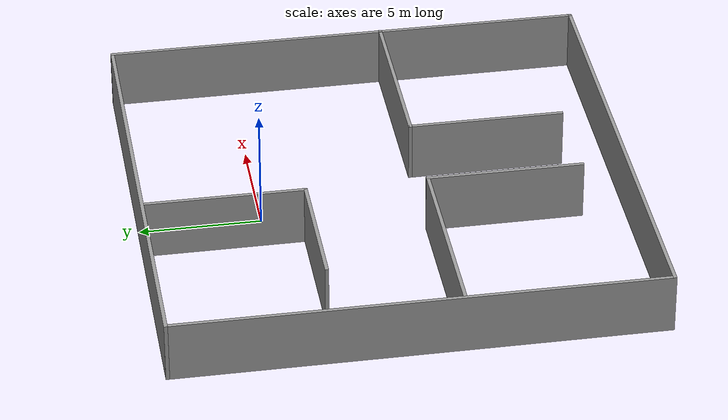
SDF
<?xml version='1.0'?>
<sdf version='1.7'>
  <model name='room'>
    <pose>-0.0689 -4.925 0 0 -0 0</pose>
    <link name='Wall_10'>
      <collision name='Wall_10_Collision'>
        <geometry>
          <box>
            <size>20 0.15 2.5</size>
          </box>
        </geometry>
        <pose>0 0 1.25 0 -0 0</pose>
      </collision>
      <visual name='Wall_10_Visual'>
        <pose>0 0 1.25 0 -0 0</pose>
        <geometry>
          <box>
            <size>20 0.15 2.5</size>
          </box>
        </geometry>
        <material>
          <script>
            <uri>file://media/materials/scripts/gazebo.material</uri>
            <name>Gazebo/Grey</name>
          </script>
          <ambient>1 1 1 1</ambient>
        </material>
        <meta>
          <layer>0</layer>
        </meta>
      </visual>
      <pose>-0.0061 9.925 0 0 -0 0</pose>
    </link>
    <link name='Wall_11'>
      <collision name='Wall_11_Collision'>
        <geometry>
          <box>
            <size>20 0.15 2.5</size>
          </box>
        </geometry>
        <pose>0 0 1.25 0 -0 0</pose>
      </collision>
      <visual name='Wall_11_Visual'>
        <pose>0 0 1.25 0 -0 0</pose>
        <geometry>
          <box>
            <size>20 0.15 2.5</size>
          </box>
        </geometry>
        <material>
          <script>
            <uri>file://media/materials/scripts/gazebo.material</uri>
            <name>Gazebo/Grey</name>
          </script>
          <ambient>1 1 1 1</ambient>
        </material>
        <meta>
          <layer>0</layer>
        </meta>
      </visual>
      <pose>9.9189 0 0 0 -0 -1.5708</pose>
    </link>
    <link name='Wall_13'>
      <collision name='Wall_13_Collision'>
        <geometry>
          <box>
            <size>20 0.15 2.5</size>
          </box>
        </geometry>
        <pose>0 0 1.25 0 -0 0</pose>
      </collision>
      <visual name='Wall_13_Visual'>
        <pose>0 0 1.25 0 -0 0</pose>
        <geometry>
          <box>
            <size>20 0.15 2.5</size>
          </box>
        </geometry>
        <material>
          <script>
            <uri>file://media/materials/scripts/gazebo.material</uri>
            <name>Gazebo/Grey</name>
          </script>
          <ambient>1 1 1 1</ambient>
        </material>
        <meta>
          <layer>0</layer>
        </meta>
      </visual>
      <pose>-9.9311 0 0 0 -0 -1.5708</pose>
    </link>
    <link name='Wall_14'>
      <collision name='Wall_14_Collision'>
        <geometry>
          <box>
            <size>20 0.15 2.5</size>
          </box>
        </geometry>
        <pose>0 0 1.25 0 -0 0</pose>
      </collision>
      <visual name='Wall_14_Visual'>
        <pose>0 0 1.25 0 -0 0</pose>
        <geometry>
          <box>
            <size>20 0.15 2.5</size>
          </box>
        </geometry>
        <material>
          <script>
            <uri>file://media/materials/scripts/gazebo.material</uri>
            <name>Gazebo/Grey</name>
          </script>
          <ambient>1 1 1 1</ambient>
        </material>
        <meta>
          <layer>0</layer>
        </meta>
      </visual>
      <pose>-0.0061 -9.925 0 0 -0 0</pose>
    </link>
    <link name='Wall_19'>
      <collision name='Wall_19_Collision'>
        <geometry>
          <box>
            <size>6.75 0.15 2.5</size>
          </box>
        </geometry>
        <pose>0 0 1.25 0 -0 0</pose>
      </collision>
      <visual name='Wall_19_Visual'>
        <pose>0 0 1.25 0 -0 0</pose>
        <geometry>
          <box>
            <size>6.75 0.15 2.5</size>
          </box>
        </geometry>
        <material>
          <script>
            <uri>file://media/materials/scripts/gazebo.material</uri>
            <name>Gazebo/Grey</name>
          </script>
          <ambient>1 1 1 1</ambient>
        </material>
        <meta>
          <layer>0</layer>
        </meta>
      </visual>
      <pose>-1.58567 6.61451 0 0 -0 -1.5708</pose>
    </link>
    <link name='Wall_20'>
      <collision name='Wall_20_Collision'>
        <geometry>
          <box>
            <size>5.75 0.15 2.5</size>
          </box>
        </geometry>
        <pose>0 0 1.25 0 -0 0</pose>
      </collision>
      <visual name='Wall_20_Visual'>
        <pose>0 0 1.25 0 -0 0</pose>
        <geometry>
          <box>
            <size>5.75 0.15 2.5</size>
          </box>
        </geometry>
        <material>
          <script>
            <uri>file://media/materials/scripts/gazebo.material</uri>
            <name>Gazebo/Grey</name>
          </script>
          <ambient>1 1 1 1</ambient>
        </material>
        <meta>
          <layer>0</layer>
        </meta>
      </visual>
      <pose>-4.38567 3.31451 0 0 -0 3.14159</pose>
    </link>
    <link name='Wall_23'>
      <collision name='Wall_23_Collision'>
        <geometry>
          <box>
            <size>8.5 0.15 2.5</size>
          </box>
        </geometry>
        <pose>0 0 1.25 0 -0 0</pose>
      </collision>
      <visual name='Wall_23_Visual'>
        <pose>0 0 1.25 0 -0 0</pose>
        <geometry>
          <box>
            <size>8.5 0.15 2.5</size>
          </box>
        </geometry>
        <material>
          <script>
            <uri>file://media/materials/scripts/gazebo.material</uri>
            <name>Gazebo/Grey</name>
          </script>
          <ambient>1 1 1 1</ambient>
        </material>
        <meta>
          <layer>0</layer>
        </meta>
      </visual>
      <pose>-5.7472 -1.67681 0 0 -0 -4.5e-05</pose>
    </link>
    <link name='Wall_25'>
      <collision name='Wall_25_Collision'>
        <geometry>
          <box>
            <size>6.5 0.15 2.5</size>
          </box>
        </geometry>
        <pose>0 0 1.25 0 -0 0</pose>
      </collision>
      <visual name='Wall_25_Visual'>
        <pose>0 0 1.25 0 -0 0</pose>
        <geometry>
          <box>
            <size>6.5 0.15 2.5</size>
          </box>
        </geometry>
        <material>
          <script>
            <uri>file://media/materials/scripts/gazebo.material</uri>
            <name>Gazebo/Grey</name>
          </script>
          <ambient>1 1 1 1</ambient>
        </material>
        <meta>
          <layer>0</layer>
        </meta>
      </visual>
      <pose>-1.5721 -4.852 0 0 -0 -1.5708</pose>
    </link>
    <link name='Wall_27'>
      <collision name='Wall_27_Collision'>
        <geometry>
          <box>
            <size>7.75 0.15 2.5</size>
          </box>
        </geometry>
        <pose>0 0 1.25 0 -0 0</pose>
      </collision>
      <visual name='Wall_27_Visual'>
        <pose>0 0 1.25 0 -0 0</pose>
        <geometry>
          <box>
            <size>7.75 0.15 2.5</size>
          </box>
        </geometry>
        <material>
          <script>
            <uri>file://media/materials/scripts/gazebo.material</uri>
            <name>Gazebo/Grey</name>
          </script>
          <ambient>1 1 1 1</ambient>
        </material>
        <meta>
          <layer>0</layer>
        </meta>
      </visual>
      <pose>6.1311 -1.61402 0 0 -0 3.14159</pose>
    </link>
    <link name='Wall_28'>
      <collision name='Wall_28_Collision'>
        <geometry>
          <box>
            <size>6.5 0.15 2.5</size>
          </box>
        </geometry>
        <pose>0 0 1.25 0 -0 0</pose>
      </collision>
      <visual name='Wall_28_Visual'>
        <pose>0 0 1.25 0 -0 0</pose>
        <geometry>
          <box>
            <size>6.5 0.15 2.5</size>
          </box>
        </geometry>
        <material>
          <script>
            <uri>file://media/materials/scripts/gazebo.material</uri>
            <name>Gazebo/Grey</name>
          </script>
          <ambient>1 1 1 1</ambient>
        </material>
        <meta>
          <layer>0</layer>
        </meta>
      </visual>
      <pose>2.3311 -4.78902 0 0 -0 -1.5708</pose>
    </link>
    <static>1</static>
  </model>
</sdf>
